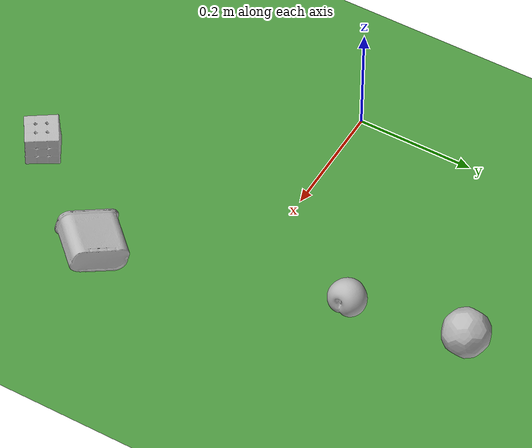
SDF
<sdf version="1.7">
 <world name="default">
  <physics type="ode">
   <ode>
    <solver>
     <type>quick</type>
     <iters>100</iters>
     <sor>1</sor>
     <use_dynamic_moi_rescaling>0</use_dynamic_moi_rescaling>
    </solver>
    <constraints>
     <cfm>0</cfm>
     <erp>0.9</erp>
     <contact_max_correcting_vel>0.1</contact_max_correcting_vel>
     <contact_surface_layer>0</contact_surface_layer>
    </constraints>
   </ode>
   <real_time_update_rate>1000</real_time_update_rate>
   <max_step_size>0.001</max_step_size>
   <real_time_factor>1</real_time_factor>
  </physics>
  <scene>
   <sky><clouds><speed>12</speed></clouds></sky>
   <ambient>0.4 0.4 0.4 1</ambient>
   <background>0.25 0.25 0.25 1</background>
   <shadows>1</shadows>
   <boundary><min>-5.0 -5.0 0</min><max>5.0 5.0 50</max></boundary>
  </scene>
  <model name="ground_plane">
   <static>1</static>
   <link name="link">
    <collision name="collision">
     <geometry><plane><normal>0 0 1</normal><size>10 10</size></plane></geometry>
     <surface><friction><ode><mu>1</mu><mu2>1</mu2></ode></friction></surface>
    </collision>
    <visual name="grass">
     <cast_shadows>0</cast_shadows>
     <geometry><plane><normal>0 0 1</normal><size>10 10</size></plane></geometry>
     <material>
      <script><uri>file://media/materials/scripts/gazebo.material</uri><name>Gazebo/Grass</name></script>
     </material>
    </visual>
   </link>
  </model>
  <model name="peach">
   <pose>-0.406014 -0.321612 0.415721 0.280194 0.433155 0.578424</pose>
   <frame name="peach::__model__" attached_to="peach::link">
    <pose relative_to="__model__">1 0 0 0 -0 0</pose>
   </frame>
   <link name="peach::link">
    <inertial>
     <inertia>
      <ixx>4.58765e-08</ixx>
      <ixy>-6.82467e-24</ixy>
      <ixz>4.97606e-24</ixz>
      <iyy>4.44404e-08</iyy>
      <iyz>-3.03756e-24</iyz>
      <izz>4.09827e-08</izz>
     </inertia>
     <mass>0.000117214</mass>
    </inertial>
    <collision name="collision">
     <geometry><mesh><uri>/home/hussein/catkin_ws/src/iq_sim/models/peach/textured.dae</uri></mesh></geometry>
    </collision>
    <visual name="visual">
     <geometry><mesh><uri>/home/hussein/catkin_ws/src/iq_sim/models/peach/textured.dae</uri></mesh></geometry>
    </visual>
    <pose relative_to="peach::__model__">0 0 0 0 -0 0</pose>
   </link>
   <link name="link">
    <pose>0.6 -1 0 0 -0 0</pose>
    <inertial>
     <inertia><ixx>1</ixx><ixy>0</ixy><ixz>0</ixz><iyy>1</iyy><iyz>0</iyz><izz>1</izz></inertia>
     <mass>1</mass>
    </inertial>
    <velocity>0.000487 -0.000355 0.007348 -0.088469 -0.12125 3e-06</velocity>
    <acceleration>0.555999 -0.334827 15.3356 0.693333 0.854298 1.6179</acceleration>
    <wrench>6.5e-05 -3.9e-05 0.001798 0 -0 0</wrench>
   </link>
  </model>
  <model name="rubiks_cube">
   <pose>-0.502727 -2.49889 -2.98979 -8.8e-05 0.00973 0.094026</pose>
   <frame name="rubiks_cube::__model__" attached_to="rubiks_cube::link">
    <pose relative_to="__model__">1 2 3 0 -0 0</pose>
   </frame>
   <link name="rubiks_cube::link">
    <inertial>
     <inertia>
      <ixx>9.85204e-08</ixx>
      <ixy>-8.06182e-24</ixy>
      <ixz>2.09764e-24</ixz>
      <iyy>9.83358e-08</iyy>
      <iyz>-2.13219e-23</iyz>
      <izz>9.8182e-08</izz>
     </inertia>
     <mass>0.000182877</mass>
    </inertial>
    <collision name="collision">
     <geometry>
      <mesh><uri>/home/hussein/catkin_ws/src/iq_sim/models/rubiks_cube/textured.dae</uri></mesh>
     </geometry>
    </collision>
    <visual name="visual">
     <geometry>
      <mesh><uri>/home/hussein/catkin_ws/src/iq_sim/models/rubiks_cube/textured.dae</uri></mesh>
     </geometry>
    </visual>
    <pose relative_to="rubiks_cube::__model__">0 0 0 0 -0 0</pose>
   </link>
  </model>
  <model name="potted_meat_can">
   <pose>2.3035 0.994464 2.06338 -1.51779 0.217622 2.40403</pose>
   <frame name="potted_meat_can::__model__" attached_to="potted_meat_can::link">
    <pose relative_to="__model__">1 2 2 0 -0 0</pose>
   </frame>
   <link name="potted_meat_can::link">
    <inertial>
     <inertia>
      <ixx>4.28737e-07</ixx>
      <ixy>-2.02031e-23</ixy>
      <ixz>-4.82341e-24</ixz>
      <iyy>3.22809e-07</iyy>
      <iyz>-5.3025e-25</iyz>
      <izz>2.49254e-07</izz>
     </inertia>
     <mass>0.000354132</mass>
    </inertial>
    <collision name="collision">
     <geometry>
      <mesh><uri>/home/hussein/catkin_ws/src/iq_sim/models/potted_meat_can/textured.dae</uri></mesh>
     </geometry>
    </collision>
    <visual name="visual">
     <geometry>
      <mesh><uri>/home/hussein/catkin_ws/src/iq_sim/models/potted_meat_can/textured.dae</uri></mesh>
     </geometry>
    </visual>
    <pose relative_to="potted_meat_can::__model__">0 0 0 0 -0 0</pose>
   </link>
  </model>
  <gravity>0 0 -9.8</gravity>
  <magnetic_field>6e-06 2.3e-05 -4.2e-05</magnetic_field>
  <atmosphere type="adiabatic"/>
  <spherical_coordinates>
   <surface_model>EARTH_WGS84</surface_model>
   <latitude_deg>0</latitude_deg>
   <longitude_deg>0</longitude_deg>
   <elevation>0</elevation>
   <heading_deg>0</heading_deg>
  </spherical_coordinates>
  <model name="soccer_ball">
   <static>0</static>
   <link name="soccer_ball_link">
    <inertial>
     <mass>0.026</mass>
     <inertia>
      <ixx>1.664e-05</ixx>
      <iyy>1.664e-05</iyy>
      <izz>1.664e-05</izz>
      <ixy>0</ixy>
      <ixz>0</ixz>
      <iyz>0</iyz>
     </inertia>
    </inertial>
    <collision name="collision"><geometry><sphere><radius>0.04</radius></sphere></geometry></collision>
    <visual name="visual">
     <geometry>
      <mesh><scale>0.04 0.04 0.04</scale><uri>model://robocup_3Dsim_ball/meshes/ball.dae</uri></mesh>
     </geometry>
    </visual>
   </link>
   <pose>0.331332 0.368162 0.04 0 -0 0</pose>
  </model>
 </world>
</sdf>
